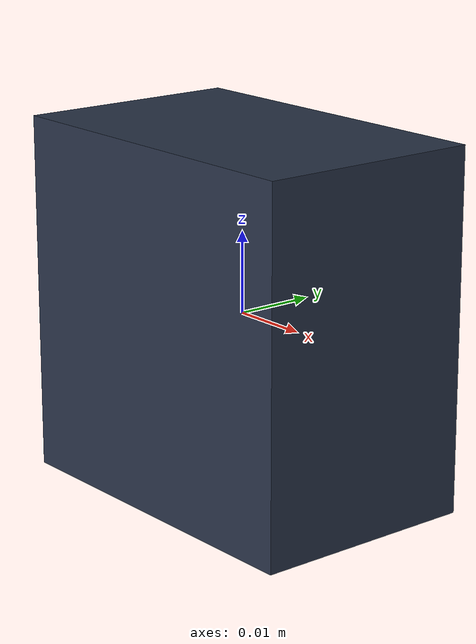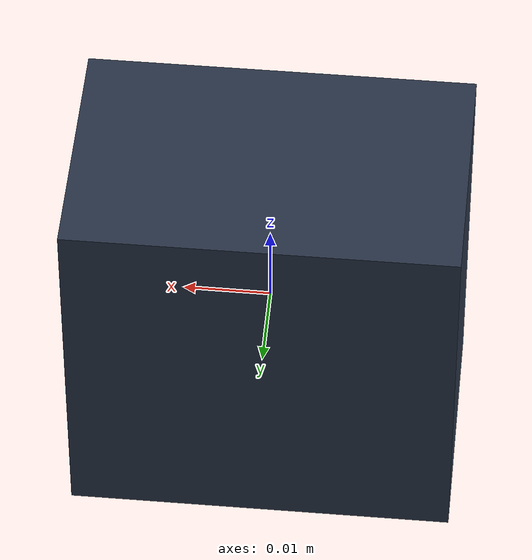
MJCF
<?xml version="1.0" encoding="UTF-8"?>
<!-- Clean-room, task-local counterweight for the VLABench seesaw task. -->
<mujoco model="libero_vlabench_seesaw_weight">
  <compiler angle="radian"/>
  <worldbody>
    <body>
      <body name="object">
        <geom name="weight_visual" type="box" size="0.022 0.014 0.022"
              group="1" rgba="0.16 0.20 0.28 1" contype="0" conaffinity="0"/>
        <geom name="weight_collision" type="box" size="0.022 0.014 0.022"
              mass="0.08" friction="1.5 0.3 0.1"
              solref="0.001 1" solimp="0.998 0.998 0.001" rgba="0 0 0 0"
              contype="1" conaffinity="1"/>
      </body>
      <site name="bottom_site" pos="0 0 -0.022" size="0.005" rgba="0 0 0 0"/>
      <site name="top_site" pos="0 0 0.022" size="0.005" rgba="0 0 0 0"/>
      <site name="horizontal_radius_site" pos="0.022 0 0" size="0.005" rgba="0 0 0 0"/>
    </body>
  </worldbody>
</mujoco>
